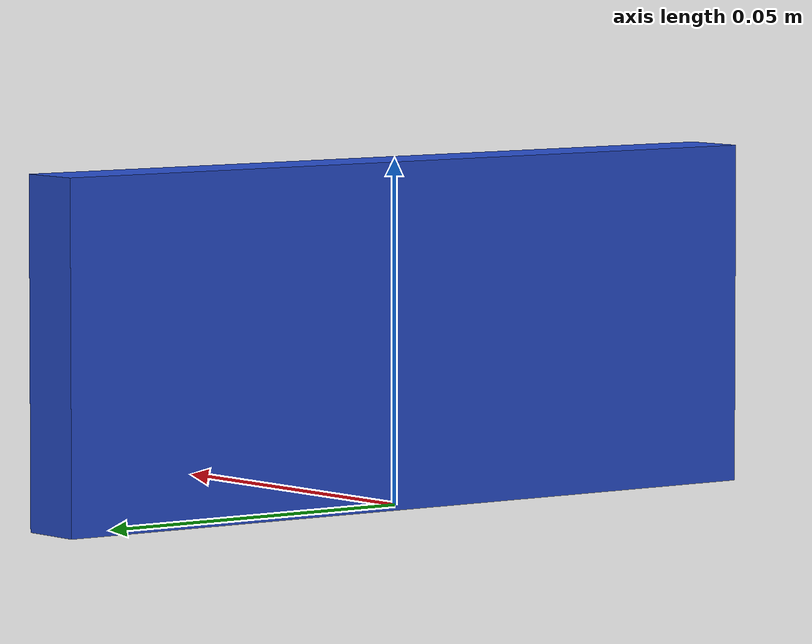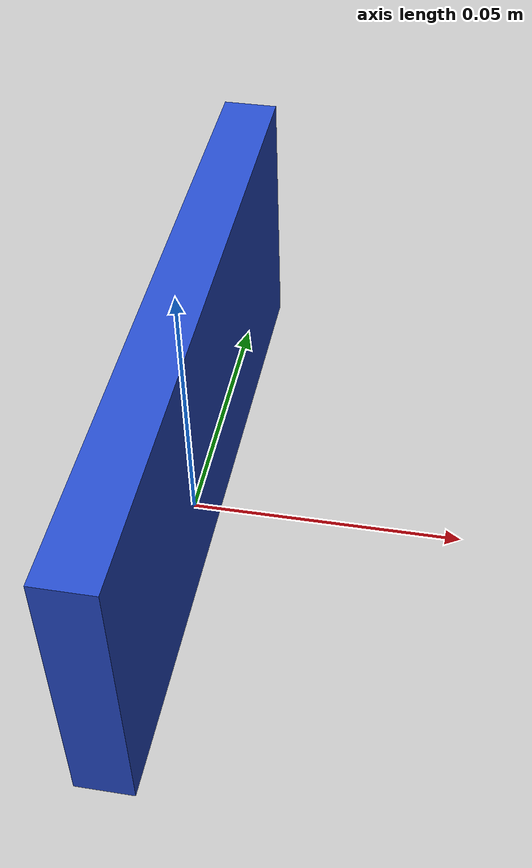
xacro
<?xml version="1.0"?>
<robot xmlns:xacro="http://www.ros.org/wiki/xacro" name="box">

	<xacro:macro name="box_inertia_def" params="h w d mass">
	<inertia ixx="${mass * (w*w+d*d)/ 12}"
			 iyy="${mass * (h*h+d*d)/ 12}"
			 izz="${mass * (h*h+w*w) / 12}"
			 ixy="0" iyz="0" ixz="0"/>
	</xacro:macro>

	<link name="box">
		<inertial>
				<mass value="5.0"/>
				<origin xyz="0 0 0.005"/>
				<xacro:box_inertia_def h="0.01" w="0.12" d="0.05" mass="5.0" />

		</inertial>

		<visual>
			<origin xyz="0.0 0.0 0.025" rpy="0 0 0"/>

			 <geometry>
		      <box size="0.01  0.12  0.05"/>

			</geometry>
		</visual>

		<collision>
			<origin xyz="0.0 0.0 0.025" rpy="0 0 0"/>

			<geometry>
				 <box size="0.01  0.12  0.05"/> -->

			</geometry>
		</collision>

	</link>

      <gazebo reference="box">
      	<material>Gazebo/Blue</material>
           <selfCollide>true</selfCollide>
           <maxContacts>100</maxContacts>
		  <gravity>true</gravity>
	    <mu1>0.5</mu1>
	     <mu2>0.5</mu2>

	        <fdir1>0 0 0</fdir1>
         <maxVel>0.0</maxVel>

		<kp>1000000000.0</kp>
	  <kd>10000.0</kd>
	  <minDepth>0.00</minDepth>

	  </gazebo>

</robot>
